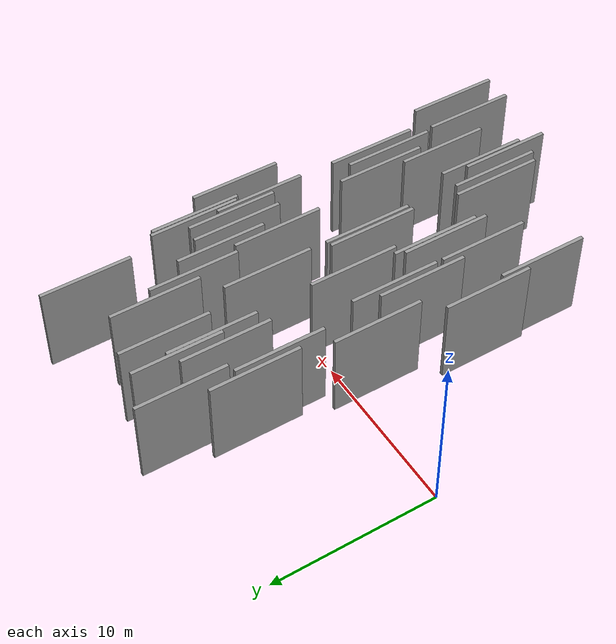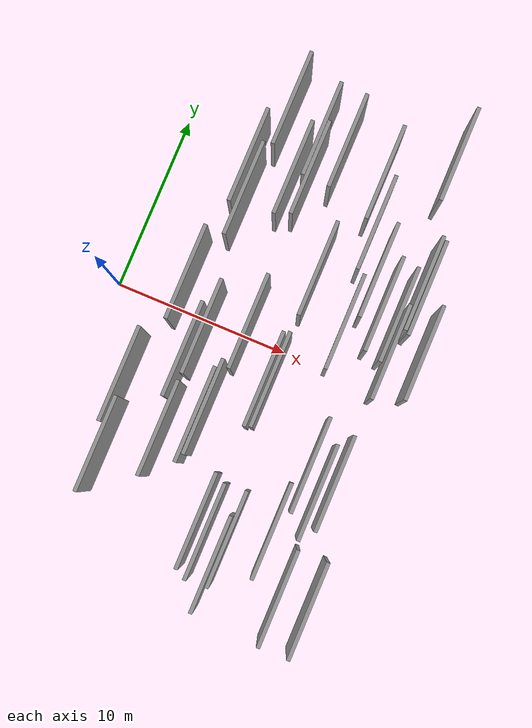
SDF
<sdf version="1.6">
 <world name="default">
  <scene>
   <sky><clouds><speed>12</speed></clouds></sky>
   <ambient>0.4 0.4 0.4 1</ambient>
   <background>0.7 0.7 0.7 1</background>
   <shadows>1</shadows>
  </scene>
  <gravity>0 0 -9.8066</gravity>
  <magnetic_field>6e-06 2.3e-05 -4.2e-05</magnetic_field>
  <physics default="0" name="default_physics" type="ode">
   <ode>
    <solver>
     <type>quick</type>
     <iters>10</iters>
     <sor>1.0</sor>
     <use_dynamic_moi_rescaling>0</use_dynamic_moi_rescaling>
    </solver>
    <constraints>
     <cfm>0</cfm>
     <erp>0.2</erp>
     <contact_max_correcting_vel>100</contact_max_correcting_vel>
     <contact_surface_layer>0.001</contact_surface_layer>
    </constraints>
   </ode>
   <max_step_size>0.004</max_step_size>
   <real_time_factor>1</real_time_factor>
   <real_time_update_rate>250</real_time_update_rate>
  </physics>
  <light name="sun" type="directional">
   <pose>0 0 10 0 0 0</pose>
   <diffuse>0.8 0.8 0.8 1</diffuse>
   <specular>0.2 0.2 0.2 1</specular>
   <attenuation>
    <range>1000</range>
    <constant>0.9</constant>
    <linear>0.01</linear>
    <quadratic>0.001</quadratic>
   </attenuation>
   <direction>-0.5 0.1 -0.9</direction>
  </light>
  <model name="grey_wall_1">
   <static>1</static>
   <pose>10.9724 -11.4936 5.0 0.000000 0.000000 1.570796</pose>
   <link name="link">
    <pose>0 0 2.50 0 0 0</pose>
    <collision name="collision"><geometry><box><size>5.00 0.2 5.00</size></box></geometry></collision>
    <visual name="visual">
     <cast_shadows>0</cast_shadows>
     <geometry><box><size>5.00 0.2 5.00</size></box></geometry>
     <material>
      <script>
       <uri>model://grey_wall/materials/scripts</uri>
       <uri>model://grey_wall/materials/textures</uri>
       <name>vrc/grey_wall</name>
      </script>
     </material>
    </visual>
   </link>
  </model>
  <model name="grey_wall_2">
   <static>1</static>
   <pose>10.1718 -2.2187 5.0 0.000000 0.000000 1.570796</pose>
   <link name="link">
    <pose>0 0 2.50 0 0 0</pose>
    <collision name="collision"><geometry><box><size>5.00 0.2 5.00</size></box></geometry></collision>
    <visual name="visual">
     <cast_shadows>0</cast_shadows>
     <geometry><box><size>5.00 0.2 5.00</size></box></geometry>
     <material>
      <script>
       <uri>model://grey_wall/materials/scripts</uri>
       <uri>model://grey_wall/materials/textures</uri>
       <name>vrc/grey_wall</name>
      </script>
     </material>
    </visual>
   </link>
  </model>
  <model name="grey_wall_3">
   <static>1</static>
   <pose>6.0777 -6.4689 5.0 0.000000 0.000000 1.570796</pose>
   <link name="link">
    <pose>0 0 2.50 0 0 0</pose>
    <collision name="collision"><geometry><box><size>5.00 0.2 5.00</size></box></geometry></collision>
    <visual name="visual">
     <cast_shadows>0</cast_shadows>
     <geometry><box><size>5.00 0.2 5.00</size></box></geometry>
     <material>
      <script>
       <uri>model://grey_wall/materials/scripts</uri>
       <uri>model://grey_wall/materials/textures</uri>
       <name>vrc/grey_wall</name>
      </script>
     </material>
    </visual>
   </link>
  </model>
  <model name="grey_wall_4">
   <static>1</static>
   <pose>9.1397 10.0775 5.0 0.000000 0.000000 1.570796</pose>
   <link name="link">
    <pose>0 0 2.50 0 0 0</pose>
    <collision name="collision"><geometry><box><size>5.00 0.2 5.00</size></box></geometry></collision>
    <visual name="visual">
     <cast_shadows>0</cast_shadows>
     <geometry><box><size>5.00 0.2 5.00</size></box></geometry>
     <material>
      <script>
       <uri>model://grey_wall/materials/scripts</uri>
       <uri>model://grey_wall/materials/textures</uri>
       <name>vrc/grey_wall</name>
      </script>
     </material>
    </visual>
   </link>
  </model>
  <model name="grey_wall_5">
   <static>1</static>
   <pose>7.4665 -5.1760 5.0 0.000000 0.000000 1.570796</pose>
   <link name="link">
    <pose>0 0 2.50 0 0 0</pose>
    <collision name="collision"><geometry><box><size>5.00 0.2 5.00</size></box></geometry></collision>
    <visual name="visual">
     <cast_shadows>0</cast_shadows>
     <geometry><box><size>5.00 0.2 5.00</size></box></geometry>
     <material>
      <script>
       <uri>model://grey_wall/materials/scripts</uri>
       <uri>model://grey_wall/materials/textures</uri>
       <name>vrc/grey_wall</name>
      </script>
     </material>
    </visual>
   </link>
  </model>
  <model name="grey_wall_6">
   <static>1</static>
   <pose>8.0929 -0.0164 5.0 0.000000 0.000000 1.570796</pose>
   <link name="link">
    <pose>0 0 2.50 0 0 0</pose>
    <collision name="collision"><geometry><box><size>5.00 0.2 5.00</size></box></geometry></collision>
    <visual name="visual">
     <cast_shadows>0</cast_shadows>
     <geometry><box><size>5.00 0.2 5.00</size></box></geometry>
     <material>
      <script>
       <uri>model://grey_wall/materials/scripts</uri>
       <uri>model://grey_wall/materials/textures</uri>
       <name>vrc/grey_wall</name>
      </script>
     </material>
    </visual>
   </link>
  </model>
  <model name="grey_wall_7">
   <static>1</static>
   <pose>14.3893 -6.3644 5.0 0.000000 0.000000 1.570796</pose>
   <link name="link">
    <pose>0 0 2.50 0 0 0</pose>
    <collision name="collision"><geometry><box><size>5.00 0.2 5.00</size></box></geometry></collision>
    <visual name="visual">
     <cast_shadows>0</cast_shadows>
     <geometry><box><size>5.00 0.2 5.00</size></box></geometry>
     <material>
      <script>
       <uri>model://grey_wall/materials/scripts</uri>
       <uri>model://grey_wall/materials/textures</uri>
       <name>vrc/grey_wall</name>
      </script>
     </material>
    </visual>
   </link>
  </model>
  <model name="grey_wall_8">
   <static>1</static>
   <pose>3.3117 -4.7731 5.0 0.000000 0.000000 1.570796</pose>
   <link name="link">
    <pose>0 0 2.50 0 0 0</pose>
    <collision name="collision"><geometry><box><size>5.00 0.2 5.00</size></box></geometry></collision>
    <visual name="visual">
     <cast_shadows>0</cast_shadows>
     <geometry><box><size>5.00 0.2 5.00</size></box></geometry>
     <material>
      <script>
       <uri>model://grey_wall/materials/scripts</uri>
       <uri>model://grey_wall/materials/textures</uri>
       <name>vrc/grey_wall</name>
      </script>
     </material>
    </visual>
   </link>
  </model>
  <model name="grey_wall_9">
   <static>1</static>
   <pose>7.1729 7.8223 5.0 0.000000 0.000000 1.570796</pose>
   <link name="link">
    <pose>0 0 2.50 0 0 0</pose>
    <collision name="collision"><geometry><box><size>5.00 0.2 5.00</size></box></geometry></collision>
    <visual name="visual">
     <cast_shadows>0</cast_shadows>
     <geometry><box><size>5.00 0.2 5.00</size></box></geometry>
     <material>
      <script>
       <uri>model://grey_wall/materials/scripts</uri>
       <uri>model://grey_wall/materials/textures</uri>
       <name>vrc/grey_wall</name>
      </script>
     </material>
    </visual>
   </link>
  </model>
  <model name="grey_wall_10">
   <static>1</static>
   <pose>4.9095 7.5499 5.0 0.000000 0.000000 1.570796</pose>
   <link name="link">
    <pose>0 0 2.50 0 0 0</pose>
    <collision name="collision"><geometry><box><size>5.00 0.2 5.00</size></box></geometry></collision>
    <visual name="visual">
     <cast_shadows>0</cast_shadows>
     <geometry><box><size>5.00 0.2 5.00</size></box></geometry>
     <material>
      <script>
       <uri>model://grey_wall/materials/scripts</uri>
       <uri>model://grey_wall/materials/textures</uri>
       <name>vrc/grey_wall</name>
      </script>
     </material>
    </visual>
   </link>
  </model>
  <model name="grey_wall_11">
   <static>1</static>
   <pose>15.0552 1.2706 5.0 0.000000 0.000000 1.570796</pose>
   <link name="link">
    <pose>0 0 2.50 0 0 0</pose>
    <collision name="collision"><geometry><box><size>5.00 0.2 5.00</size></box></geometry></collision>
    <visual name="visual">
     <cast_shadows>0</cast_shadows>
     <geometry><box><size>5.00 0.2 5.00</size></box></geometry>
     <material>
      <script>
       <uri>model://grey_wall/materials/scripts</uri>
       <uri>model://grey_wall/materials/textures</uri>
       <name>vrc/grey_wall</name>
      </script>
     </material>
    </visual>
   </link>
  </model>
  <model name="grey_wall_12">
   <static>1</static>
   <pose>12.9910 4.7460 5.0 0.000000 0.000000 1.570796</pose>
   <link name="link">
    <pose>0 0 2.50 0 0 0</pose>
    <collision name="collision"><geometry><box><size>5.00 0.2 5.00</size></box></geometry></collision>
    <visual name="visual">
     <cast_shadows>0</cast_shadows>
     <geometry><box><size>5.00 0.2 5.00</size></box></geometry>
     <material>
      <script>
       <uri>model://grey_wall/materials/scripts</uri>
       <uri>model://grey_wall/materials/textures</uri>
       <name>vrc/grey_wall</name>
      </script>
     </material>
    </visual>
   </link>
  </model>
  <model name="grey_wall_13">
   <static>1</static>
   <pose>15.5084 4.8284 5.0 0.000000 0.000000 1.570796</pose>
   <link name="link">
    <pose>0 0 2.50 0 0 0</pose>
    <collision name="collision"><geometry><box><size>5.00 0.2 5.00</size></box></geometry></collision>
    <visual name="visual">
     <cast_shadows>0</cast_shadows>
     <geometry><box><size>5.00 0.2 5.00</size></box></geometry>
     <material>
      <script>
       <uri>model://grey_wall/materials/scripts</uri>
       <uri>model://grey_wall/materials/textures</uri>
       <name>vrc/grey_wall</name>
      </script>
     </material>
    </visual>
   </link>
  </model>
  <model name="grey_wall_14">
   <static>1</static>
   <pose>16.1221 -11.7386 5.0 0.000000 0.000000 1.570796</pose>
   <link name="link">
    <pose>0 0 2.50 0 0 0</pose>
    <collision name="collision"><geometry><box><size>5.00 0.2 5.00</size></box></geometry></collision>
    <visual name="visual">
     <cast_shadows>0</cast_shadows>
     <geometry><box><size>5.00 0.2 5.00</size></box></geometry>
     <material>
      <script>
       <uri>model://grey_wall/materials/scripts</uri>
       <uri>model://grey_wall/materials/textures</uri>
       <name>vrc/grey_wall</name>
      </script>
     </material>
    </visual>
   </link>
  </model>
  <model name="grey_wall_15">
   <static>1</static>
   <pose>10.2262 3.6799 5.0 0.000000 0.000000 1.570796</pose>
   <link name="link">
    <pose>0 0 2.50 0 0 0</pose>
    <collision name="collision"><geometry><box><size>5.00 0.2 5.00</size></box></geometry></collision>
    <visual name="visual">
     <cast_shadows>0</cast_shadows>
     <geometry><box><size>5.00 0.2 5.00</size></box></geometry>
     <material>
      <script>
       <uri>model://grey_wall/materials/scripts</uri>
       <uri>model://grey_wall/materials/textures</uri>
       <name>vrc/grey_wall</name>
      </script>
     </material>
    </visual>
   </link>
  </model>
  <model name="grey_wall_16">
   <static>1</static>
   <pose>13.5578 -5.2801 5.0 0.000000 0.000000 1.570796</pose>
   <link name="link">
    <pose>0 0 2.50 0 0 0</pose>
    <collision name="collision"><geometry><box><size>5.00 0.2 5.00</size></box></geometry></collision>
    <visual name="visual">
     <cast_shadows>0</cast_shadows>
     <geometry><box><size>5.00 0.2 5.00</size></box></geometry>
     <material>
      <script>
       <uri>model://grey_wall/materials/scripts</uri>
       <uri>model://grey_wall/materials/textures</uri>
       <name>vrc/grey_wall</name>
      </script>
     </material>
    </visual>
   </link>
  </model>
  <model name="grey_wall_17">
   <static>1</static>
   <pose>11.4427 9.3307 5.0 0.000000 0.000000 1.570796</pose>
   <link name="link">
    <pose>0 0 2.50 0 0 0</pose>
    <collision name="collision"><geometry><box><size>5.00 0.2 5.00</size></box></geometry></collision>
    <visual name="visual">
     <cast_shadows>0</cast_shadows>
     <geometry><box><size>5.00 0.2 5.00</size></box></geometry>
     <material>
      <script>
       <uri>model://grey_wall/materials/scripts</uri>
       <uri>model://grey_wall/materials/textures</uri>
       <name>vrc/grey_wall</name>
      </script>
     </material>
    </visual>
   </link>
  </model>
  <model name="grey_wall_18">
   <static>1</static>
   <pose>12.0053 6.8655 5.0 0.000000 0.000000 1.570796</pose>
   <link name="link">
    <pose>0 0 2.50 0 0 0</pose>
    <collision name="collision"><geometry><box><size>5.00 0.2 5.00</size></box></geometry></collision>
    <visual name="visual">
     <cast_shadows>0</cast_shadows>
     <geometry><box><size>5.00 0.2 5.00</size></box></geometry>
     <material>
      <script>
       <uri>model://grey_wall/materials/scripts</uri>
       <uri>model://grey_wall/materials/textures</uri>
       <name>vrc/grey_wall</name>
      </script>
     </material>
    </visual>
   </link>
  </model>
  <model name="grey_wall_19">
   <static>1</static>
   <pose>9.8760 -2.3170 5.0 0.000000 0.000000 1.570796</pose>
   <link name="link">
    <pose>0 0 2.50 0 0 0</pose>
    <collision name="collision"><geometry><box><size>5.00 0.2 5.00</size></box></geometry></collision>
    <visual name="visual">
     <cast_shadows>0</cast_shadows>
     <geometry><box><size>5.00 0.2 5.00</size></box></geometry>
     <material>
      <script>
       <uri>model://grey_wall/materials/scripts</uri>
       <uri>model://grey_wall/materials/textures</uri>
       <name>vrc/grey_wall</name>
      </script>
     </material>
    </visual>
   </link>
  </model>
  <model name="grey_wall_20">
   <static>1</static>
   <pose>15.2842 4.9964 5.0 0.000000 0.000000 1.570796</pose>
   <link name="link">
    <pose>0 0 2.50 0 0 0</pose>
    <collision name="collision"><geometry><box><size>5.00 0.2 5.00</size></box></geometry></collision>
    <visual name="visual">
     <cast_shadows>0</cast_shadows>
     <geometry><box><size>5.00 0.2 5.00</size></box></geometry>
     <material>
      <script>
       <uri>model://grey_wall/materials/scripts</uri>
       <uri>model://grey_wall/materials/textures</uri>
       <name>vrc/grey_wall</name>
      </script>
     </material>
    </visual>
   </link>
  </model>
  <model name="grey_wall_21">
   <static>1</static>
   <pose>14.5709 -11.7439 5.0 0.000000 0.000000 1.570796</pose>
   <link name="link">
    <pose>0 0 2.50 0 0 0</pose>
    <collision name="collision"><geometry><box><size>5.00 0.2 5.00</size></box></geometry></collision>
    <visual name="visual">
     <cast_shadows>0</cast_shadows>
     <geometry><box><size>5.00 0.2 5.00</size></box></geometry>
     <material>
      <script>
       <uri>model://grey_wall/materials/scripts</uri>
       <uri>model://grey_wall/materials/textures</uri>
       <name>vrc/grey_wall</name>
      </script>
     </material>
    </visual>
   </link>
  </model>
  <model name="grey_wall_22">
   <static>1</static>
   <pose>4.3378 1.0388 5.0 0.000000 0.000000 1.570796</pose>
   <link name="link">
    <pose>0 0 2.50 0 0 0</pose>
    <collision name="collision"><geometry><box><size>5.00 0.2 5.00</size></box></geometry></collision>
    <visual name="visual">
     <cast_shadows>0</cast_shadows>
     <geometry><box><size>5.00 0.2 5.00</size></box></geometry>
     <material>
      <script>
       <uri>model://grey_wall/materials/scripts</uri>
       <uri>model://grey_wall/materials/textures</uri>
       <name>vrc/grey_wall</name>
      </script>
     </material>
    </visual>
   </link>
  </model>
  <model name="grey_wall_23">
   <static>1</static>
   <pose>14.9870 -5.6555 5.0 0.000000 0.000000 1.570796</pose>
   <link name="link">
    <pose>0 0 2.50 0 0 0</pose>
    <collision name="collision"><geometry><box><size>5.00 0.2 5.00</size></box></geometry></collision>
    <visual name="visual">
     <cast_shadows>0</cast_shadows>
     <geometry><box><size>5.00 0.2 5.00</size></box></geometry>
     <material>
      <script>
       <uri>model://grey_wall/materials/scripts</uri>
       <uri>model://grey_wall/materials/textures</uri>
       <name>vrc/grey_wall</name>
      </script>
     </material>
    </visual>
   </link>
  </model>
  <model name="grey_wall_24">
   <static>1</static>
   <pose>13.8577 3.3101 5.0 0.000000 0.000000 1.570796</pose>
   <link name="link">
    <pose>0 0 2.50 0 0 0</pose>
    <collision name="collision"><geometry><box><size>5.00 0.2 5.00</size></box></geometry></collision>
    <visual name="visual">
     <cast_shadows>0</cast_shadows>
     <geometry><box><size>5.00 0.2 5.00</size></box></geometry>
     <material>
      <script>
       <uri>model://grey_wall/materials/scripts</uri>
       <uri>model://grey_wall/materials/textures</uri>
       <name>vrc/grey_wall</name>
      </script>
     </material>
    </visual>
   </link>
  </model>
  <model name="grey_wall_25">
   <static>1</static>
   <pose>3.6063 -8.3145 5.0 0.000000 0.000000 1.570796</pose>
   <link name="link">
    <pose>0 0 2.50 0 0 0</pose>
    <collision name="collision"><geometry><box><size>5.00 0.2 5.00</size></box></geometry></collision>
    <visual name="visual">
     <cast_shadows>0</cast_shadows>
     <geometry><box><size>5.00 0.2 5.00</size></box></geometry>
     <material>
      <script>
       <uri>model://grey_wall/materials/scripts</uri>
       <uri>model://grey_wall/materials/textures</uri>
       <name>vrc/grey_wall</name>
      </script>
     </material>
    </visual>
   </link>
  </model>
  <model name="grey_wall_26">
   <static>1</static>
   <pose>13.0564 -8.9126 5.0 0.000000 0.000000 1.570796</pose>
   <link name="link">
    <pose>0 0 2.50 0 0 0</pose>
    <collision name="collision"><geometry><box><size>5.00 0.2 5.00</size></box></geometry></collision>
    <visual name="visual">
     <cast_shadows>0</cast_shadows>
     <geometry><box><size>5.00 0.2 5.00</size></box></geometry>
     <material>
      <script>
       <uri>model://grey_wall/materials/scripts</uri>
       <uri>model://grey_wall/materials/textures</uri>
       <name>vrc/grey_wall</name>
      </script>
     </material>
    </visual>
   </link>
  </model>
  <model name="grey_wall_27">
   <static>1</static>
   <pose>6.0910 -1.1146 5.0 0.000000 0.000000 1.570796</pose>
   <link name="link">
    <pose>0 0 2.50 0 0 0</pose>
    <collision name="collision"><geometry><box><size>5.00 0.2 5.00</size></box></geometry></collision>
    <visual name="visual">
     <cast_shadows>0</cast_shadows>
     <geometry><box><size>5.00 0.2 5.00</size></box></geometry>
     <material>
      <script>
       <uri>model://grey_wall/materials/scripts</uri>
       <uri>model://grey_wall/materials/textures</uri>
       <name>vrc/grey_wall</name>
      </script>
     </material>
    </visual>
   </link>
  </model>
  <model name="grey_wall_28">
   <static>1</static>
   <pose>9.5137 -9.8451 5.0 0.000000 0.000000 1.570796</pose>
   <link name="link">
    <pose>0 0 2.50 0 0 0</pose>
    <collision name="collision"><geometry><box><size>5.00 0.2 5.00</size></box></geometry></collision>
    <visual name="visual">
     <cast_shadows>0</cast_shadows>
     <geometry><box><size>5.00 0.2 5.00</size></box></geometry>
     <material>
      <script>
       <uri>model://grey_wall/materials/scripts</uri>
       <uri>model://grey_wall/materials/textures</uri>
       <name>vrc/grey_wall</name>
      </script>
     </material>
    </visual>
   </link>
  </model>
  <model name="grey_wall_29">
   <static>1</static>
   <pose>10.0942 -10.1638 5.0 0.000000 0.000000 1.570796</pose>
   <link name="link">
    <pose>0 0 2.50 0 0 0</pose>
    <collision name="collision"><geometry><box><size>5.00 0.2 5.00</size></box></geometry></collision>
    <visual name="visual">
     <cast_shadows>0</cast_shadows>
     <geometry><box><size>5.00 0.2 5.00</size></box></geometry>
     <material>
      <script>
       <uri>model://grey_wall/materials/scripts</uri>
       <uri>model://grey_wall/materials/textures</uri>
       <name>vrc/grey_wall</name>
      </script>
     </material>
    </visual>
   </link>
  </model>
  <model name="grey_wall_30">
   <static>1</static>
   <pose>5.3313 5.9450 5.0 0.000000 0.000000 1.570796</pose>
   <link name="link">
    <pose>0 0 2.50 0 0 0</pose>
    <collision name="collision"><geometry><box><size>5.00 0.2 5.00</size></box></geometry></collision>
    <visual name="visual">
     <cast_shadows>0</cast_shadows>
     <geometry><box><size>5.00 0.2 5.00</size></box></geometry>
     <material>
      <script>
       <uri>model://grey_wall/materials/scripts</uri>
       <uri>model://grey_wall/materials/textures</uri>
       <name>vrc/grey_wall</name>
      </script>
     </material>
    </visual>
   </link>
  </model>
  <model name="grey_wall_31">
   <static>1</static>
   <pose>7.6839 -4.6787 5.0 0.000000 0.000000 1.570796</pose>
   <link name="link">
    <pose>0 0 2.50 0 0 0</pose>
    <collision name="collision"><geometry><box><size>5.00 0.2 5.00</size></box></geometry></collision>
    <visual name="visual">
     <cast_shadows>0</cast_shadows>
     <geometry><box><size>5.00 0.2 5.00</size></box></geometry>
     <material>
      <script>
       <uri>model://grey_wall/materials/scripts</uri>
       <uri>model://grey_wall/materials/textures</uri>
       <name>vrc/grey_wall</name>
      </script>
     </material>
    </visual>
   </link>
  </model>
  <model name="grey_wall_32">
   <static>1</static>
   <pose>14.4643 11.5692 5.0 0.000000 0.000000 1.570796</pose>
   <link name="link">
    <pose>0 0 2.50 0 0 0</pose>
    <collision name="collision"><geometry><box><size>5.00 0.2 5.00</size></box></geometry></collision>
    <visual name="visual">
     <cast_shadows>0</cast_shadows>
     <geometry><box><size>5.00 0.2 5.00</size></box></geometry>
     <material>
      <script>
       <uri>model://grey_wall/materials/scripts</uri>
       <uri>model://grey_wall/materials/textures</uri>
       <name>vrc/grey_wall</name>
      </script>
     </material>
    </visual>
   </link>
  </model>
  <model name="grey_wall_33">
   <static>1</static>
   <pose>16.5656 1.8389 5.0 0.000000 0.000000 1.570796</pose>
   <link name="link">
    <pose>0 0 2.50 0 0 0</pose>
    <collision name="collision"><geometry><box><size>5.00 0.2 5.00</size></box></geometry></collision>
    <visual name="visual">
     <cast_shadows>0</cast_shadows>
     <geometry><box><size>5.00 0.2 5.00</size></box></geometry>
     <material>
      <script>
       <uri>model://grey_wall/materials/scripts</uri>
       <uri>model://grey_wall/materials/textures</uri>
       <name>vrc/grey_wall</name>
      </script>
     </material>
    </visual>
   </link>
  </model>
  <model name="grey_wall_34">
   <static>1</static>
   <pose>12.4327 1.7697 5.0 0.000000 0.000000 1.570796</pose>
   <link name="link">
    <pose>0 0 2.50 0 0 0</pose>
    <collision name="collision"><geometry><box><size>5.00 0.2 5.00</size></box></geometry></collision>
    <visual name="visual">
     <cast_shadows>0</cast_shadows>
     <geometry><box><size>5.00 0.2 5.00</size></box></geometry>
     <material>
      <script>
       <uri>model://grey_wall/materials/scripts</uri>
       <uri>model://grey_wall/materials/textures</uri>
       <name>vrc/grey_wall</name>
      </script>
     </material>
    </visual>
   </link>
  </model>
  <model name="grey_wall_35">
   <static>1</static>
   <pose>5.7958 10.9968 5.0 0.000000 0.000000 1.570796</pose>
   <link name="link">
    <pose>0 0 2.50 0 0 0</pose>
    <collision name="collision"><geometry><box><size>5.00 0.2 5.00</size></box></geometry></collision>
    <visual name="visual">
     <cast_shadows>0</cast_shadows>
     <geometry><box><size>5.00 0.2 5.00</size></box></geometry>
     <material>
      <script>
       <uri>model://grey_wall/materials/scripts</uri>
       <uri>model://grey_wall/materials/textures</uri>
       <name>vrc/grey_wall</name>
      </script>
     </material>
    </visual>
   </link>
  </model>
  <model name="grey_wall_36">
   <static>1</static>
   <pose>11.2190 -10.0994 5.0 0.000000 0.000000 1.570796</pose>
   <link name="link">
    <pose>0 0 2.50 0 0 0</pose>
    <collision name="collision"><geometry><box><size>5.00 0.2 5.00</size></box></geometry></collision>
    <visual name="visual">
     <cast_shadows>0</cast_shadows>
     <geometry><box><size>5.00 0.2 5.00</size></box></geometry>
     <material>
      <script>
       <uri>model://grey_wall/materials/scripts</uri>
       <uri>model://grey_wall/materials/textures</uri>
       <name>vrc/grey_wall</name>
      </script>
     </material>
    </visual>
   </link>
  </model>
  <model name="grey_wall_37">
   <static>1</static>
   <pose>7.9475 8.1347 5.0 0.000000 0.000000 1.570796</pose>
   <link name="link">
    <pose>0 0 2.50 0 0 0</pose>
    <collision name="collision"><geometry><box><size>5.00 0.2 5.00</size></box></geometry></collision>
    <visual name="visual">
     <cast_shadows>0</cast_shadows>
     <geometry><box><size>5.00 0.2 5.00</size></box></geometry>
     <material>
      <script>
       <uri>model://grey_wall/materials/scripts</uri>
       <uri>model://grey_wall/materials/textures</uri>
       <name>vrc/grey_wall</name>
      </script>
     </material>
    </visual>
   </link>
  </model>
  <model name="grey_wall_38">
   <static>1</static>
   <pose>5.6648 -2.4766 5.0 0.000000 0.000000 1.570796</pose>
   <link name="link">
    <pose>0 0 2.50 0 0 0</pose>
    <collision name="collision"><geometry><box><size>5.00 0.2 5.00</size></box></geometry></collision>
    <visual name="visual">
     <cast_shadows>0</cast_shadows>
     <geometry><box><size>5.00 0.2 5.00</size></box></geometry>
     <material>
      <script>
       <uri>model://grey_wall/materials/scripts</uri>
       <uri>model://grey_wall/materials/textures</uri>
       <name>vrc/grey_wall</name>
      </script>
     </material>
    </visual>
   </link>
  </model>
  <model name="grey_wall_39">
   <static>1</static>
   <pose>7.7453 10.1446 5.0 0.000000 0.000000 1.570796</pose>
   <link name="link">
    <pose>0 0 2.50 0 0 0</pose>
    <collision name="collision"><geometry><box><size>5.00 0.2 5.00</size></box></geometry></collision>
    <visual name="visual">
     <cast_shadows>0</cast_shadows>
     <geometry><box><size>5.00 0.2 5.00</size></box></geometry>
     <material>
      <script>
       <uri>model://grey_wall/materials/scripts</uri>
       <uri>model://grey_wall/materials/textures</uri>
       <name>vrc/grey_wall</name>
      </script>
     </material>
    </visual>
   </link>
  </model>
  <model name="grey_wall_40">
   <static>1</static>
   <pose>14.7376 3.1086 5.0 0.000000 0.000000 1.570796</pose>
   <link name="link">
    <pose>0 0 2.50 0 0 0</pose>
    <collision name="collision"><geometry><box><size>5.00 0.2 5.00</size></box></geometry></collision>
    <visual name="visual">
     <cast_shadows>0</cast_shadows>
     <geometry><box><size>5.00 0.2 5.00</size></box></geometry>
     <material>
      <script>
       <uri>model://grey_wall/materials/scripts</uri>
       <uri>model://grey_wall/materials/textures</uri>
       <name>vrc/grey_wall</name>
      </script>
     </material>
    </visual>
   </link>
  </model>
 </world>
</sdf>
